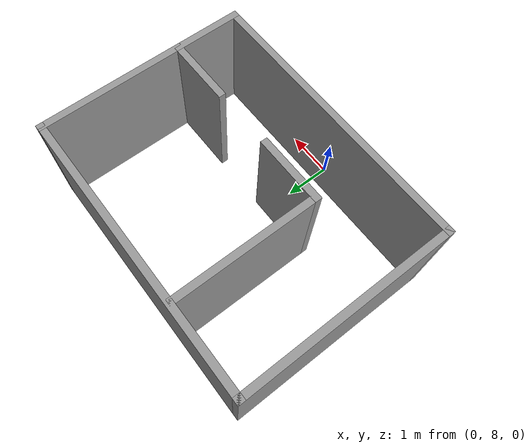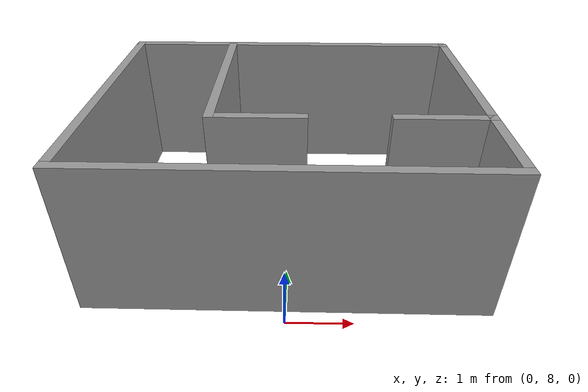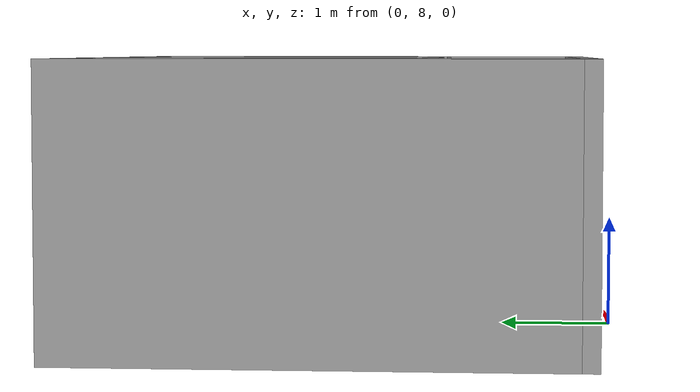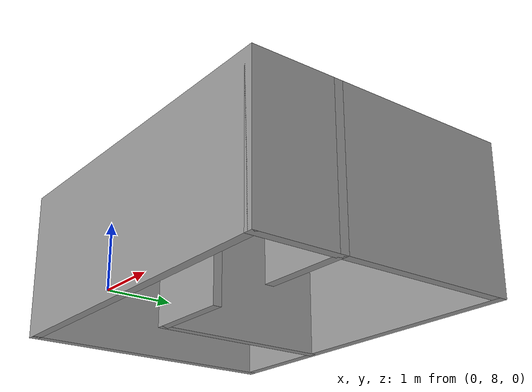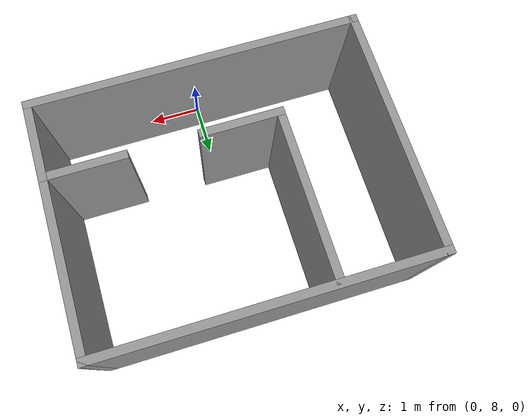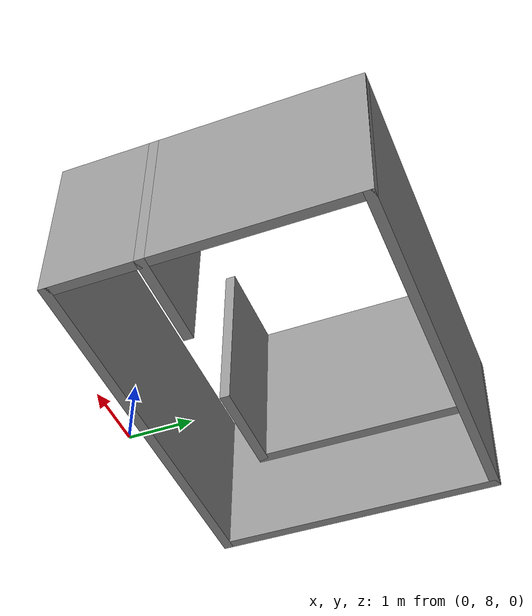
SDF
<?xml version='1.0'?>
<sdf version='1.6'>
  <model name='p1_world'>
    <link name='Wall_68'>
      <pose frame=''>0 8.27527 0 0 -0 0</pose>
      <self_collide>0</self_collide>
      <enable_wind>0</enable_wind>
      <kinematic>0</kinematic>
      <visual name='Wall_68_Visual'>
        <pose frame=''>0 0 1.25 0 -0 0</pose>
        <geometry>
          <box>
            <size>6.096 0.15 2.5</size>
          </box>
        </geometry>
        <material>
          <script>
            <uri>file://media/materials/scripts/gazebo.material</uri>
            <name>Gazebo/Grey</name>
          </script>
          <ambient>1 1 1 1</ambient>
        </material>
        <meta>
          <layer>0</layer>
        </meta>
        <transparency>0</transparency>
        <cast_shadows>1</cast_shadows>
      </visual>
      <collision name='Wall_68_Collision'>
        <laser_retro>0</laser_retro>
        <max_contacts>10</max_contacts>
        <pose frame=''>0 0 1.25 0 -0 0</pose>
        <geometry>
          <box>
            <size>6.096 0.15 2.5</size>
          </box>
        </geometry>
        <surface>
          <friction>
            <ode>
              <mu>1</mu>
              <mu2>1</mu2>
              <fdir1>0 0 0</fdir1>
              <slip1>0</slip1>
              <slip2>0</slip2>
            </ode>
            <torsional>
              <coefficient>1</coefficient>
              <patch_radius>0</patch_radius>
              <surface_radius>0</surface_radius>
              <use_patch_radius>1</use_patch_radius>
              <ode>
                <slip>0</slip>
              </ode>
            </torsional>
          </friction>
          <bounce>
            <restitution_coefficient>0</restitution_coefficient>
            <threshold>1e+06</threshold>
          </bounce>
          <contact>
            <collide_without_contact>0</collide_without_contact>
            <collide_without_contact_bitmask>1</collide_without_contact_bitmask>
            <collide_bitmask>1</collide_bitmask>
            <ode>
              <soft_cfm>0</soft_cfm>
              <soft_erp>0.2</soft_erp>
              <kp>1e+13</kp>
              <kd>1</kd>
              <max_vel>0.01</max_vel>
              <min_depth>0</min_depth>
            </ode>
            <bullet>
              <split_impulse>1</split_impulse>
              <split_impulse_penetration_threshold>-0.01</split_impulse_penetration_threshold>
              <soft_cfm>0</soft_cfm>
              <soft_erp>0.2</soft_erp>
              <kp>1e+13</kp>
              <kd>1</kd>
            </bullet>
          </contact>
        </surface>
      </collision>
    </link>
    <link name='Wall_70'>
      <pose frame=''>-2.973 10.4863 0 0 -0 1.5708</pose>
      <self_collide>0</self_collide>
      <enable_wind>0</enable_wind>
      <kinematic>0</kinematic>
      <visual name='Wall_70_Visual'>
        <pose frame=''>0 0 1.25 0 -0 0</pose>
        <geometry>
          <box>
            <size>4.572 0.15 2.5</size>
          </box>
        </geometry>
        <material>
          <script>
            <uri>file://media/materials/scripts/gazebo.material</uri>
            <name>Gazebo/Grey</name>
          </script>
          <ambient>1 1 1 1</ambient>
        </material>
        <meta>
          <layer>0</layer>
        </meta>
        <transparency>0</transparency>
        <cast_shadows>1</cast_shadows>
      </visual>
      <collision name='Wall_70_Collision'>
        <laser_retro>0</laser_retro>
        <max_contacts>10</max_contacts>
        <pose frame=''>0 0 1.25 0 -0 0</pose>
        <geometry>
          <box>
            <size>4.572 0.15 2.5</size>
          </box>
        </geometry>
        <surface>
          <friction>
            <ode>
              <mu>1</mu>
              <mu2>1</mu2>
              <fdir1>0 0 0</fdir1>
              <slip1>0</slip1>
              <slip2>0</slip2>
            </ode>
            <torsional>
              <coefficient>1</coefficient>
              <patch_radius>0</patch_radius>
              <surface_radius>0</surface_radius>
              <use_patch_radius>1</use_patch_radius>
              <ode>
                <slip>0</slip>
              </ode>
            </torsional>
          </friction>
          <bounce>
            <restitution_coefficient>0</restitution_coefficient>
            <threshold>1e+06</threshold>
          </bounce>
          <contact>
            <collide_without_contact>0</collide_without_contact>
            <collide_without_contact_bitmask>1</collide_without_contact_bitmask>
            <collide_bitmask>1</collide_bitmask>
            <ode>
              <soft_cfm>0</soft_cfm>
              <soft_erp>0.2</soft_erp>
              <kp>1e+13</kp>
              <kd>1</kd>
              <max_vel>0.01</max_vel>
              <min_depth>0</min_depth>
            </ode>
            <bullet>
              <split_impulse>1</split_impulse>
              <split_impulse_penetration_threshold>-0.01</split_impulse_penetration_threshold>
              <soft_cfm>0</soft_cfm>
              <soft_erp>0.2</soft_erp>
              <kp>1e+13</kp>
              <kd>1</kd>
            </bullet>
          </contact>
        </surface>
      </collision>
    </link>
    <link name='Wall_85'>
      <pose frame=''>0 12.6973 0 0 -0 0</pose>
      <self_collide>0</self_collide>
      <enable_wind>0</enable_wind>
      <kinematic>0</kinematic>
      <visual name='Wall_85_Visual'>
        <pose frame=''>0 0 1.25 0 -0 0</pose>
        <geometry>
          <box>
            <size>6.096 0.15 2.5</size>
          </box>
        </geometry>
        <material>
          <script>
            <uri>file://media/materials/scripts/gazebo.material</uri>
            <name>Gazebo/Grey</name>
          </script>
          <ambient>1 1 1 1</ambient>
        </material>
        <meta>
          <layer>0</layer>
        </meta>
        <transparency>0</transparency>
        <cast_shadows>1</cast_shadows>
      </visual>
      <collision name='Wall_85_Collision'>
        <laser_retro>0</laser_retro>
        <max_contacts>10</max_contacts>
        <pose frame=''>0 0 1.25 0 -0 0</pose>
        <geometry>
          <box>
            <size>6.096 0.15 2.5</size>
          </box>
        </geometry>
        <surface>
          <friction>
            <ode>
              <mu>1</mu>
              <mu2>1</mu2>
              <fdir1>0 0 0</fdir1>
              <slip1>0</slip1>
              <slip2>0</slip2>
            </ode>
            <torsional>
              <coefficient>1</coefficient>
              <patch_radius>0</patch_radius>
              <surface_radius>0</surface_radius>
              <use_patch_radius>1</use_patch_radius>
              <ode>
                <slip>0</slip>
              </ode>
            </torsional>
          </friction>
          <bounce>
            <restitution_coefficient>0</restitution_coefficient>
            <threshold>1e+06</threshold>
          </bounce>
          <contact>
            <collide_without_contact>0</collide_without_contact>
            <collide_without_contact_bitmask>1</collide_without_contact_bitmask>
            <collide_bitmask>1</collide_bitmask>
            <ode>
              <soft_cfm>0</soft_cfm>
              <soft_erp>0.2</soft_erp>
              <kp>1e+13</kp>
              <kd>1</kd>
              <max_vel>0.01</max_vel>
              <min_depth>0</min_depth>
            </ode>
            <bullet>
              <split_impulse>1</split_impulse>
              <split_impulse_penetration_threshold>-0.01</split_impulse_penetration_threshold>
              <soft_cfm>0</soft_cfm>
              <soft_erp>0.2</soft_erp>
              <kp>1e+13</kp>
              <kd>1</kd>
            </bullet>
          </contact>
        </surface>
      </collision>
    </link>
    <link name='Wall_87'>
      <pose frame=''>2.973 8.96227 0 0 -0 1.5708</pose>
      <self_collide>0</self_collide>
      <enable_wind>0</enable_wind>
      <kinematic>0</kinematic>
      <visual name='Wall_87_Visual'>
        <pose frame=''>0 0 1.25 0 -0 0</pose>
        <geometry>
          <box>
            <size>1.524 0.15 2.5</size>
          </box>
        </geometry>
        <material>
          <script>
            <uri>file://media/materials/scripts/gazebo.material</uri>
            <name>Gazebo/Grey</name>
          </script>
          <ambient>1 1 1 1</ambient>
        </material>
        <meta>
          <layer>0</layer>
        </meta>
        <transparency>0</transparency>
        <cast_shadows>1</cast_shadows>
      </visual>
      <collision name='Wall_87_Collision'>
        <laser_retro>0</laser_retro>
        <max_contacts>10</max_contacts>
        <pose frame=''>0 0 1.25 0 -0 0</pose>
        <geometry>
          <box>
            <size>1.524 0.15 2.5</size>
          </box>
        </geometry>
        <surface>
          <friction>
            <ode>
              <mu>1</mu>
              <mu2>1</mu2>
              <fdir1>0 0 0</fdir1>
              <slip1>0</slip1>
              <slip2>0</slip2>
            </ode>
            <torsional>
              <coefficient>1</coefficient>
              <patch_radius>0</patch_radius>
              <surface_radius>0</surface_radius>
              <use_patch_radius>1</use_patch_radius>
              <ode>
                <slip>0</slip>
              </ode>
            </torsional>
          </friction>
          <bounce>
            <restitution_coefficient>0</restitution_coefficient>
            <threshold>1e+06</threshold>
          </bounce>
          <contact>
            <collide_without_contact>0</collide_without_contact>
            <collide_without_contact_bitmask>1</collide_without_contact_bitmask>
            <collide_bitmask>1</collide_bitmask>
            <ode>
              <soft_cfm>0</soft_cfm>
              <soft_erp>0.2</soft_erp>
              <kp>1e+13</kp>
              <kd>1</kd>
              <max_vel>0.01</max_vel>
              <min_depth>0</min_depth>
            </ode>
            <bullet>
              <split_impulse>1</split_impulse>
              <split_impulse_penetration_threshold>-0.01</split_impulse_penetration_threshold>
              <soft_cfm>0</soft_cfm>
              <soft_erp>0.2</soft_erp>
              <kp>1e+13</kp>
              <kd>1</kd>
            </bullet>
          </contact>
        </surface>
      </collision>
    </link>
    <link name='Wall_89'>
      <pose frame=''>2.286 9.64927 0 0 -0 3.14159</pose>
      <self_collide>0</self_collide>
      <enable_wind>0</enable_wind>
      <kinematic>0</kinematic>
      <visual name='Wall_89_Visual'>
        <pose frame=''>0 0 1.25 0 -0 0</pose>
        <geometry>
          <box>
            <size>1.524 0.15 2.5</size>
          </box>
        </geometry>
        <material>
          <script>
            <uri>file://media/materials/scripts/gazebo.material</uri>
            <name>Gazebo/Grey</name>
          </script>
          <ambient>1 1 1 1</ambient>
        </material>
        <meta>
          <layer>0</layer>
        </meta>
        <transparency>0</transparency>
        <cast_shadows>1</cast_shadows>
      </visual>
      <collision name='Wall_89_Collision'>
        <laser_retro>0</laser_retro>
        <max_contacts>10</max_contacts>
        <pose frame=''>0 0 1.25 0 -0 0</pose>
        <geometry>
          <box>
            <size>1.524 0.15 2.5</size>
          </box>
        </geometry>
        <surface>
          <friction>
            <ode>
              <mu>1</mu>
              <mu2>1</mu2>
              <fdir1>0 0 0</fdir1>
              <slip1>0</slip1>
              <slip2>0</slip2>
            </ode>
            <torsional>
              <coefficient>1</coefficient>
              <patch_radius>0</patch_radius>
              <surface_radius>0</surface_radius>
              <use_patch_radius>1</use_patch_radius>
              <ode>
                <slip>0</slip>
              </ode>
            </torsional>
          </friction>
          <bounce>
            <restitution_coefficient>0</restitution_coefficient>
            <threshold>1e+06</threshold>
          </bounce>
          <contact>
            <collide_without_contact>0</collide_without_contact>
            <collide_without_contact_bitmask>1</collide_without_contact_bitmask>
            <collide_bitmask>1</collide_bitmask>
            <ode>
              <soft_cfm>0</soft_cfm>
              <soft_erp>0.2</soft_erp>
              <kp>1e+13</kp>
              <kd>1</kd>
              <max_vel>0.01</max_vel>
              <min_depth>0</min_depth>
            </ode>
            <bullet>
              <split_impulse>1</split_impulse>
              <split_impulse_penetration_threshold>-0.01</split_impulse_penetration_threshold>
              <soft_cfm>0</soft_cfm>
              <soft_erp>0.2</soft_erp>
              <kp>1e+13</kp>
              <kd>1</kd>
            </bullet>
          </contact>
        </surface>
      </collision>
    </link>
    <link name='Wall_93'>
      <pose frame=''>-0.462 9.63827 0 0 -0 0</pose>
      <self_collide>0</self_collide>
      <enable_wind>0</enable_wind>
      <kinematic>0</kinematic>
      <visual name='Wall_93_Visual'>
        <pose frame=''>0 0 1.25 0 -0 0</pose>
        <geometry>
          <box>
            <size>1.524 0.15 2.5</size>
          </box>
        </geometry>
        <material>
          <script>
            <uri>file://media/materials/scripts/gazebo.material</uri>
            <name>Gazebo/Grey</name>
          </script>
          <ambient>1 1 1 1</ambient>
        </material>
        <meta>
          <layer>0</layer>
        </meta>
        <transparency>0</transparency>
        <cast_shadows>1</cast_shadows>
      </visual>
      <collision name='Wall_93_Collision'>
        <laser_retro>0</laser_retro>
        <max_contacts>10</max_contacts>
        <pose frame=''>0 0 1.25 0 -0 0</pose>
        <geometry>
          <box>
            <size>1.524 0.15 2.5</size>
          </box>
        </geometry>
        <surface>
          <friction>
            <ode>
              <mu>1</mu>
              <mu2>1</mu2>
              <fdir1>0 0 0</fdir1>
              <slip1>0</slip1>
              <slip2>0</slip2>
            </ode>
            <torsional>
              <coefficient>1</coefficient>
              <patch_radius>0</patch_radius>
              <surface_radius>0</surface_radius>
              <use_patch_radius>1</use_patch_radius>
              <ode>
                <slip>0</slip>
              </ode>
            </torsional>
          </friction>
          <bounce>
            <restitution_coefficient>0</restitution_coefficient>
            <threshold>1e+06</threshold>
          </bounce>
          <contact>
            <collide_without_contact>0</collide_without_contact>
            <collide_without_contact_bitmask>1</collide_without_contact_bitmask>
            <collide_bitmask>1</collide_bitmask>
            <ode>
              <soft_cfm>0</soft_cfm>
              <soft_erp>0.2</soft_erp>
              <kp>1e+13</kp>
              <kd>1</kd>
              <max_vel>0.01</max_vel>
              <min_depth>0</min_depth>
            </ode>
            <bullet>
              <split_impulse>1</split_impulse>
              <split_impulse_penetration_threshold>-0.01</split_impulse_penetration_threshold>
              <soft_cfm>0</soft_cfm>
              <soft_erp>0.2</soft_erp>
              <kp>1e+13</kp>
              <kd>1</kd>
            </bullet>
          </contact>
        </surface>
      </collision>
    </link>
    <link name='Wall_95'>
      <pose frame=''>2.973 11.1733 0 0 0 -1.5708</pose>
      <self_collide>0</self_collide>
      <enable_wind>0</enable_wind>
      <kinematic>0</kinematic>
      <visual name='Wall_95_Visual'>
        <pose frame=''>0 0 1.25 0 -0 0</pose>
        <geometry>
          <box>
            <size>3.198 0.15 2.5</size>
          </box>
        </geometry>
        <material>
          <script>
            <uri>file://media/materials/scripts/gazebo.material</uri>
            <name>Gazebo/Grey</name>
          </script>
          <ambient>1 1 1 1</ambient>
        </material>
        <meta>
          <layer>0</layer>
        </meta>
        <transparency>0</transparency>
        <cast_shadows>1</cast_shadows>
      </visual>
      <collision name='Wall_95_Collision'>
        <laser_retro>0</laser_retro>
        <max_contacts>10</max_contacts>
        <pose frame=''>0 0 1.25 0 -0 0</pose>
        <geometry>
          <box>
            <size>3.198 0.15 2.5</size>
          </box>
        </geometry>
        <surface>
          <friction>
            <ode>
              <mu>1</mu>
              <mu2>1</mu2>
              <fdir1>0 0 0</fdir1>
              <slip1>0</slip1>
              <slip2>0</slip2>
            </ode>
            <torsional>
              <coefficient>1</coefficient>
              <patch_radius>0</patch_radius>
              <surface_radius>0</surface_radius>
              <use_patch_radius>1</use_patch_radius>
              <ode>
                <slip>0</slip>
              </ode>
            </torsional>
          </friction>
          <bounce>
            <restitution_coefficient>0</restitution_coefficient>
            <threshold>1e+06</threshold>
          </bounce>
          <contact>
            <collide_without_contact>0</collide_without_contact>
            <collide_without_contact_bitmask>1</collide_without_contact_bitmask>
            <collide_bitmask>1</collide_bitmask>
            <ode>
              <soft_cfm>0</soft_cfm>
              <soft_erp>0.2</soft_erp>
              <kp>1e+13</kp>
              <kd>1</kd>
              <max_vel>0.01</max_vel>
              <min_depth>0</min_depth>
            </ode>
            <bullet>
              <split_impulse>1</split_impulse>
              <split_impulse_penetration_threshold>-0.01</split_impulse_penetration_threshold>
              <soft_cfm>0</soft_cfm>
              <soft_erp>0.2</soft_erp>
              <kp>1e+13</kp>
              <kd>1</kd>
            </bullet>
          </contact>
        </surface>
      </collision>
    </link>
    <link name='Wall_97'>
      <pose frame=''>-1.149 11.1383 0 0 -0 1.5708</pose>
      <self_collide>0</self_collide>
      <enable_wind>0</enable_wind>
      <kinematic>0</kinematic>
      <visual name='Wall_97_Visual'>
        <pose frame=''>0 0 1.25 0 -0 0</pose>
        <geometry>
          <box>
            <size>3.15 0.15 2.5</size>
          </box>
        </geometry>
        <material>
          <script>
            <uri>file://media/materials/scripts/gazebo.material</uri>
            <name>Gazebo/Grey</name>
          </script>
          <ambient>1 1 1 1</ambient>
        </material>
        <meta>
          <layer>0</layer>
        </meta>
        <transparency>0</transparency>
        <cast_shadows>1</cast_shadows>
      </visual>
      <collision name='Wall_97_Collision'>
        <laser_retro>0</laser_retro>
        <max_contacts>10</max_contacts>
        <pose frame=''>0 0 1.25 0 -0 0</pose>
        <geometry>
          <box>
            <size>3.15 0.15 2.5</size>
          </box>
        </geometry>
        <surface>
          <friction>
            <ode>
              <mu>1</mu>
              <mu2>1</mu2>
              <fdir1>0 0 0</fdir1>
              <slip1>0</slip1>
              <slip2>0</slip2>
            </ode>
            <torsional>
              <coefficient>1</coefficient>
              <patch_radius>0</patch_radius>
              <surface_radius>0</surface_radius>
              <use_patch_radius>1</use_patch_radius>
              <ode>
                <slip>0</slip>
              </ode>
            </torsional>
          </friction>
          <bounce>
            <restitution_coefficient>0</restitution_coefficient>
            <threshold>1e+06</threshold>
          </bounce>
          <contact>
            <collide_without_contact>0</collide_without_contact>
            <collide_without_contact_bitmask>1</collide_without_contact_bitmask>
            <collide_bitmask>1</collide_bitmask>
            <ode>
              <soft_cfm>0</soft_cfm>
              <soft_erp>0.2</soft_erp>
              <kp>1e+13</kp>
              <kd>1</kd>
              <max_vel>0.01</max_vel>
              <min_depth>0</min_depth>
            </ode>
            <bullet>
              <split_impulse>1</split_impulse>
              <split_impulse_penetration_threshold>-0.01</split_impulse_penetration_threshold>
              <soft_cfm>0</soft_cfm>
              <soft_erp>0.2</soft_erp>
              <kp>1e+13</kp>
              <kd>1</kd>
            </bullet>
          </contact>
        </surface>
      </collision>
    </link>
    <static>1</static>
    <allow_auto_disable>1</allow_auto_disable>
  </model>
</sdf>
